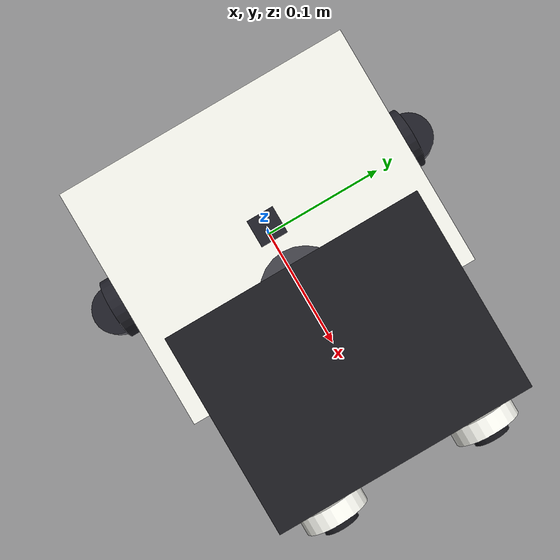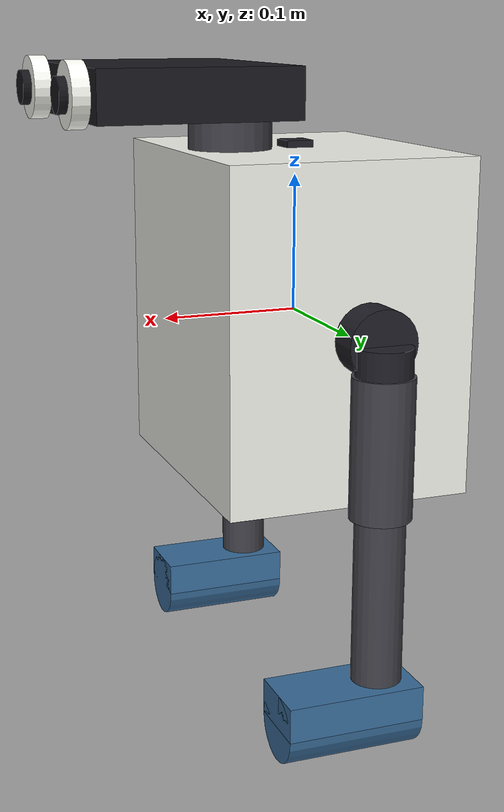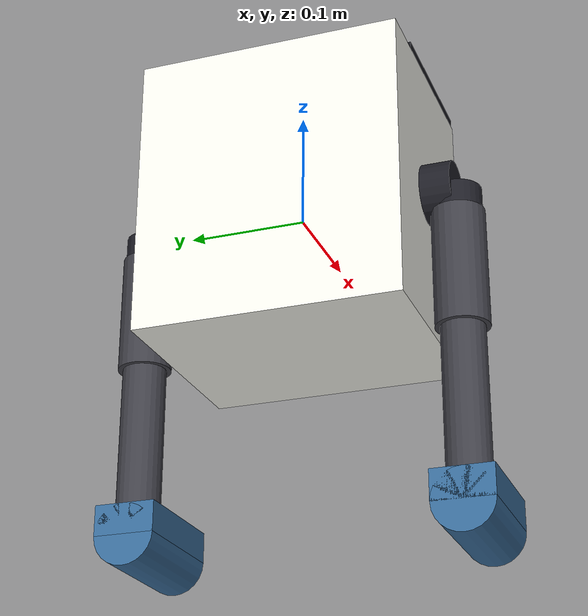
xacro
<?xml version="1.0"?>
<robot name="biped_digitigrade_claude_code" xmlns:xacro="http://www.ros.org/wiki/xacro">

  <!-- ========== 寸法パラメータ ========== -->

  <!-- 胴体（BD-1風：大きめの箱型） -->
  <xacro:property name="body_width" value="0.22" />      <!-- 胴体幅（Y方向） [m] -->
  <xacro:property name="body_depth" value="0.18" />      <!-- 胴体奥行き（X方向） [m] -->
  <xacro:property name="body_height" value="0.24" />     <!-- 胴体高さ（Z方向） [m] -->

  <!-- 首と顔（BD-1風：首は短く、顔は前後に長い） -->
  <xacro:property name="neck_length" value="0.025" />    <!-- 首の長さ（短い） [m] -->
  <xacro:property name="neck_radius" value="0.03" />     <!-- 首の半径 [m] -->
  <xacro:property name="head_width" value="0.18" />      <!-- 顔の幅（Y方向） [m] -->
  <xacro:property name="head_depth" value="0.14" />      <!-- 顔の奥行き（X方向・前後に長い） [m] -->
  <xacro:property name="head_height" value="0.035" />    <!-- 顔の高さ（Z方向・薄い） [m] -->
  <xacro:property name="eye_radius" value="0.022" />     <!-- 目の半径 [m] -->
  <xacro:property name="eye_depth" value="0.012" />      <!-- 目の出っ張り [m] -->
  <xacro:property name="eye_spacing" value="0.055" />    <!-- 目の間隔（中心から左右） [m] -->

  <!-- 脚部（BD-1風：短めでずんぐり） -->
  <xacro:property name="hip_y_offset" value="0.11" />    <!-- 胴体中心から股関節までのY距離 [m] -->
  <xacro:property name="hip_x_offset" value="-0.01" />   <!-- 胴体中心から股関節までのX距離（やや後方） [m] -->
  <xacro:property name="hip_yaw_length" value="0.025" /> <!-- ヨー軸リンク長 [m] -->
  <xacro:property name="hip_roll_length" value="0.02" /> <!-- ロール軸リンク長 [m] -->
  <xacro:property name="thigh_length" value="0.10" />    <!-- 大腿部長さ（短め） [m] -->
  <xacro:property name="shank_length" value="0.12" />    <!-- 下腿部長さ（短め） [m] -->

  <!-- 足部 -->
  <xacro:property name="foot_length" value="0.10" />     <!-- 足の全長（X方向） [m] -->
  <xacro:property name="foot_width" value="0.05" />      <!-- 足の幅（Y方向） [m] -->
  <xacro:property name="foot_radius" value="0.025" />    <!-- かまぼこ型足裏の半径 [m] -->
  <xacro:property name="ankle_x_offset" value="0.025" /> <!-- 足首から足後端までの距離 [m] -->

  <!-- リンク太さ -->
  <xacro:property name="thigh_radius" value="0.022" />
  <xacro:property name="shank_radius" value="0.018" />
  <xacro:property name="joint_radius" value="0.025" />

  <!-- pi は xacro の組み込み定数を使用 -->

  <!-- ========== マテリアル定義 ========== -->

  <material name="body_white">
    <color rgba="0.95 0.95 0.92 1.0"/>
  </material>

  <material name="body_accent">
    <color rgba="0.2 0.45 0.7 1.0"/>
  </material>

  <material name="leg_gray">
    <color rgba="0.25 0.25 0.28 1.0"/>
  </material>

  <material name="joint_dark">
    <color rgba="0.12 0.12 0.15 1.0"/>
  </material>

  <material name="foot_blue">
    <color rgba="0.22 0.42 0.6 1.0"/>
  </material>

  <material name="eye_white">
    <color rgba="0.98 0.98 0.95 1.0"/>
  </material>

  <material name="eye_lens">
    <color rgba="0.08 0.08 0.1 1.0"/>
  </material>

  <material name="head_dark">
    <color rgba="0.1 0.1 0.12 1.0"/>
  </material>

  <!-- ========== Base Link (胴体) ========== -->
  <link name="base_link">
    <visual>
      <origin xyz="0 0 0" rpy="0 0 0"/>
      <geometry>
        <box size="${body_depth} ${body_width} ${body_height}"/>
      </geometry>
      <material name="body_white"/>
    </visual>
    <collision>
      <origin xyz="0 0 0" rpy="0 0 0"/>
      <geometry>
        <box size="${body_depth} ${body_width} ${body_height}"/>
      </geometry>
    </collision>
    <inertial>
      <mass value="4.0"/>
      <origin xyz="0 0 0" rpy="0 0 0"/>
      <inertia ixx="0.04" ixy="0" ixz="0" iyy="0.035" iyz="0" izz="0.05"/>
    </inertial>
  </link>

  <!-- ========== IMU Link ========== -->
  <link name="imu_link">
    <visual>
      <origin xyz="0 0 0" rpy="0 0 0"/>
      <geometry>
        <box size="0.02 0.02 0.01"/>
      </geometry>
      <material name="joint_dark"/>
    </visual>
    <inertial>
      <mass value="0.01"/>
      <origin xyz="0 0 0" rpy="0 0 0"/>
      <inertia ixx="1e-6" ixy="0" ixz="0" iyy="1e-6" iyz="0" izz="1e-6"/>
    </inertial>
  </link>

  <joint name="imu_joint" type="fixed">
    <parent link="base_link"/>
    <child link="imu_link"/>
    <origin xyz="0 0 ${body_height/2}" rpy="0 0 0"/>
  </joint>

  <!-- ========== 首 (Neck) ========== -->
  <link name="neck_link">
    <visual>
      <origin xyz="0 0 ${neck_length/2}" rpy="0 0 0"/>
      <geometry>
        <cylinder radius="${neck_radius}" length="${neck_length}"/>
      </geometry>
      <material name="leg_gray"/>
    </visual>
    <collision>
      <origin xyz="0 0 ${neck_length/2}" rpy="0 0 0"/>
      <geometry>
        <cylinder radius="${neck_radius}" length="${neck_length}"/>
      </geometry>
    </collision>
    <inertial>
      <mass value="0.1"/>
      <origin xyz="0 0 ${neck_length/2}" rpy="0 0 0"/>
      <inertia ixx="0.0001" ixy="0" ixz="0" iyy="0.0001" iyz="0" izz="0.00005"/>
    </inertial>
  </link>

  <joint name="neck_joint" type="fixed">
    <parent link="base_link"/>
    <child link="neck_link"/>
    <!-- 首は胴体の前方上面から生える -->
    <origin xyz="${body_depth/2 - 0.04} 0 ${body_height/2}" rpy="0 0 0"/>
  </joint>

  <!-- ========== 顔 (Head) ========== -->
  <link name="head_link">
    <visual>
      <origin xyz="${head_depth/2 - 0.02} 0 0" rpy="0 0 0"/>
      <geometry>
        <box size="${head_depth} ${head_width} ${head_height}"/>
      </geometry>
      <material name="head_dark"/>
    </visual>
    <collision>
      <origin xyz="${head_depth/2 - 0.02} 0 0" rpy="0 0 0"/>
      <geometry>
        <box size="${head_depth} ${head_width} ${head_height}"/>
      </geometry>
    </collision>
    <inertial>
      <mass value="0.2"/>
      <origin xyz="${head_depth/2 - 0.02} 0 0" rpy="0 0 0"/>
      <inertia ixx="0.0002" ixy="0" ixz="0" iyy="0.00015" iyz="0" izz="0.0003"/>
    </inertial>
  </link>

  <joint name="head_joint" type="fixed">
    <parent link="neck_link"/>
    <child link="head_link"/>
    <!-- 顔は首の上に配置 -->
    <origin xyz="0 0 ${neck_length + head_height/2}" rpy="0 0 0"/>
  </joint>

  <!-- ========== 左目 (Left Eye) ========== -->
  <link name="left_eye_link">
    <visual>
      <origin xyz="${eye_depth/2} 0 0" rpy="0 ${pi/2} 0"/>
      <geometry>
        <cylinder radius="${eye_radius}" length="${eye_depth}"/>
      </geometry>
      <material name="eye_white"/>
    </visual>
    <visual>
      <!-- 瞳（レンズ） -->
      <origin xyz="${eye_depth + 0.003} 0 0" rpy="0 ${pi/2} 0"/>
      <geometry>
        <cylinder radius="${eye_radius * 0.55}" length="0.006"/>
      </geometry>
      <material name="eye_lens"/>
    </visual>
    <inertial>
      <mass value="0.015"/>
      <origin xyz="0 0 0" rpy="0 0 0"/>
      <inertia ixx="1e-6" ixy="0" ixz="0" iyy="1e-6" iyz="0" izz="1e-6"/>
    </inertial>
  </link>

  <joint name="left_eye_joint" type="fixed">
    <parent link="head_link"/>
    <child link="left_eye_link"/>
    <origin xyz="${head_depth - 0.02} ${eye_spacing} 0" rpy="0 0 0"/>
  </joint>

  <!-- ========== 右目 (Right Eye) ========== -->
  <link name="right_eye_link">
    <visual>
      <origin xyz="${eye_depth/2} 0 0" rpy="0 ${pi/2} 0"/>
      <geometry>
        <cylinder radius="${eye_radius}" length="${eye_depth}"/>
      </geometry>
      <material name="eye_white"/>
    </visual>
    <visual>
      <!-- 瞳（レンズ） -->
      <origin xyz="${eye_depth + 0.003} 0 0" rpy="0 ${pi/2} 0"/>
      <geometry>
        <cylinder radius="${eye_radius * 0.55}" length="0.006"/>
      </geometry>
      <material name="eye_lens"/>
    </visual>
    <inertial>
      <mass value="0.015"/>
      <origin xyz="0 0 0" rpy="0 0 0"/>
      <inertia ixx="1e-6" ixy="0" ixz="0" iyy="1e-6" iyz="0" izz="1e-6"/>
    </inertial>
  </link>

  <joint name="right_eye_joint" type="fixed">
    <parent link="head_link"/>
    <child link="right_eye_link"/>
    <origin xyz="${head_depth - 0.02} ${-eye_spacing} 0" rpy="0 0 0"/>
  </joint>

  <!-- ========== 脚マクロ定義 ========== -->
  <xacro:macro name="leg" params="side reflect">

    <!-- Hip Yaw Joint (股関節ヨー) -->
    <joint name="${side}_hip_yaw_joint" type="revolute">
      <parent link="base_link"/>
      <child link="${side}_hip_yaw_link"/>
      <!-- 脚は胴体の側面から生える -->
      <origin xyz="${hip_x_offset} ${reflect * hip_y_offset} 0" rpy="0 0 0"/>
      <axis xyz="0 0 1"/>
      <limit lower="${-45 * pi / 180}" upper="${45 * pi / 180}" effort="50" velocity="5"/>
      <dynamics damping="0.1" friction="0.1"/>
    </joint>

    <link name="${side}_hip_yaw_link">
      <visual>
        <origin xyz="0 ${reflect * hip_yaw_length/2} 0" rpy="${pi/2} 0 0"/>
        <geometry>
          <cylinder radius="${joint_radius}" length="${hip_yaw_length}"/>
        </geometry>
        <material name="joint_dark"/>
      </visual>
      <inertial>
        <mass value="0.25"/>
        <origin xyz="0 ${reflect * hip_yaw_length/2} 0" rpy="0 0 0"/>
        <inertia ixx="0.0008" ixy="0" ixz="0" iyy="0.0008" iyz="0" izz="0.0008"/>
      </inertial>
    </link>

    <!-- Hip Roll Joint (股関節ロール) -->
    <joint name="${side}_hip_roll_joint" type="revolute">
      <parent link="${side}_hip_yaw_link"/>
      <child link="${side}_hip_roll_link"/>
      <origin xyz="0 ${reflect * hip_yaw_length} 0" rpy="0 0 0"/>
      <axis xyz="1 0 0"/>
      <limit lower="${-25 * pi / 180}" upper="${25 * pi / 180}" effort="50" velocity="5"/>
      <dynamics damping="0.1" friction="0.1"/>
    </joint>

    <link name="${side}_hip_roll_link">
      <visual>
        <origin xyz="0 0 ${-hip_roll_length/2}" rpy="0 0 0"/>
        <geometry>
          <cylinder radius="${joint_radius * 0.8}" length="${hip_roll_length}"/>
        </geometry>
        <material name="joint_dark"/>
      </visual>
      <inertial>
        <mass value="0.15"/>
        <origin xyz="0 0 ${-hip_roll_length/2}" rpy="0 0 0"/>
        <inertia ixx="0.0004" ixy="0" ixz="0" iyy="0.0004" iyz="0" izz="0.0004"/>
      </inertial>
    </link>

    <!-- Hip Pitch Joint (股関節ピッチ) -->
    <joint name="${side}_hip_pitch_joint" type="revolute">
      <parent link="${side}_hip_roll_link"/>
      <child link="${side}_thigh_link"/>
      <origin xyz="0 0 ${-hip_roll_length}" rpy="0 0 0"/>
      <axis xyz="0 1 0"/>
      <limit lower="${-90 * pi / 180}" upper="${90 * pi / 180}" effort="100" velocity="10"/>
      <dynamics damping="0.2" friction="0.15"/>
    </joint>

    <link name="${side}_thigh_link">
      <visual>
        <origin xyz="0 0 ${-thigh_length/2}" rpy="0 0 0"/>
        <geometry>
          <cylinder radius="${thigh_radius}" length="${thigh_length}"/>
        </geometry>
        <material name="leg_gray"/>
      </visual>
      <collision>
        <origin xyz="0 0 ${-thigh_length/2}" rpy="0 0 0"/>
        <geometry>
          <cylinder radius="${thigh_radius}" length="${thigh_length}"/>
        </geometry>
      </collision>
      <inertial>
        <mass value="0.6"/>
        <origin xyz="0 0 ${-thigh_length/2}" rpy="0 0 0"/>
        <inertia ixx="0.005" ixy="0" ixz="0" iyy="0.005" iyz="0" izz="0.0005"/>
      </inertial>
    </link>

    <!-- Knee Pitch Joint (膝ピッチ) - 逆関節：後方に曲がる（正の角度で後方へ） -->
    <joint name="${side}_knee_pitch_joint" type="revolute">
      <parent link="${side}_thigh_link"/>
      <child link="${side}_shank_link"/>
      <origin xyz="0 0 ${-thigh_length}" rpy="0 0 0"/>
      <axis xyz="0 1 0"/>
      <!-- 逆関節: 正の角度で後方に曲がる（鳥脚型） -->
      <limit lower="${0 * pi / 180}" upper="${120 * pi / 180}" effort="100" velocity="10"/>
      <dynamics damping="0.2" friction="0.15"/>
    </joint>

    <link name="${side}_shank_link">
      <visual>
        <origin xyz="0 0 ${-shank_length/2}" rpy="0 0 0"/>
        <geometry>
          <cylinder radius="${shank_radius}" length="${shank_length}"/>
        </geometry>
        <material name="leg_gray"/>
      </visual>
      <collision>
        <origin xyz="0 0 ${-shank_length/2}" rpy="0 0 0"/>
        <geometry>
          <cylinder radius="${shank_radius}" length="${shank_length}"/>
        </geometry>
      </collision>
      <inertial>
        <mass value="0.4"/>
        <origin xyz="0 0 ${-shank_length/2}" rpy="0 0 0"/>
        <inertia ixx="0.003" ixy="0" ixz="0" iyy="0.003" iyz="0" izz="0.0003"/>
      </inertial>
    </link>

    <!-- Ankle Pitch Joint (足首ピッチ) -->
    <joint name="${side}_ankle_pitch_joint" type="revolute">
      <parent link="${side}_shank_link"/>
      <child link="${side}_foot_link"/>
      <origin xyz="0 0 ${-shank_length}" rpy="0 0 0"/>
      <axis xyz="0 1 0"/>
      <limit lower="${-60 * pi / 180}" upper="${60 * pi / 180}" effort="50" velocity="10"/>
      <dynamics damping="0.1" friction="0.1"/>
    </joint>

    <link name="${side}_foot_link">
      <!--
        足首は足の後端から少し前方にオフセット
        足裏はかまぼこ型（半円柱・X軸方向に配置）で受動的なロール安定性を提供
        正面から見て半円になるよう、円柱をX軸方向に配置
      -->
      <!-- メイン足部（上部構造） -->
      <visual>
        <origin xyz="${foot_length/2 - ankle_x_offset} 0 ${-foot_radius/2}" rpy="0 0 0"/>
        <geometry>
          <box size="${foot_length} ${foot_width} ${foot_radius}"/>
        </geometry>
        <material name="foot_blue"/>
      </visual>
      <!-- かまぼこ型足裏（半円柱・X軸方向に配置で正面から見て半円） -->
      <visual>
        <origin xyz="${foot_length/2 - ankle_x_offset} 0 ${-foot_radius}" rpy="0 ${pi/2} 0"/>
        <geometry>
          <cylinder radius="${foot_radius}" length="${foot_length}"/>
        </geometry>
        <material name="foot_blue"/>
      </visual>
      <collision>
        <!-- 足裏の接地面として半円柱を使用（X軸方向） -->
        <origin xyz="${foot_length/2 - ankle_x_offset} 0 ${-foot_radius}" rpy="0 ${pi/2} 0"/>
        <geometry>
          <cylinder radius="${foot_radius}" length="${foot_length}"/>
        </geometry>
      </collision>
      <collision>
        <!-- 上部構造の衝突形状 -->
        <origin xyz="${foot_length/2 - ankle_x_offset} 0 ${-foot_radius/2}" rpy="0 0 0"/>
        <geometry>
          <box size="${foot_length} ${foot_width} ${foot_radius}"/>
        </geometry>
      </collision>
      <inertial>
        <mass value="0.2"/>
        <origin xyz="${foot_length/2 - ankle_x_offset} 0 ${-foot_radius}" rpy="0 0 0"/>
        <inertia ixx="0.0006" ixy="0" ixz="0" iyy="0.0008" iyz="0" izz="0.0006"/>
      </inertial>
    </link>

  </xacro:macro>

  <!-- ========== 左右の脚を生成 ========== -->
  <xacro:leg side="left" reflect="1"/>
  <xacro:leg side="right" reflect="-1"/>

</robot>
